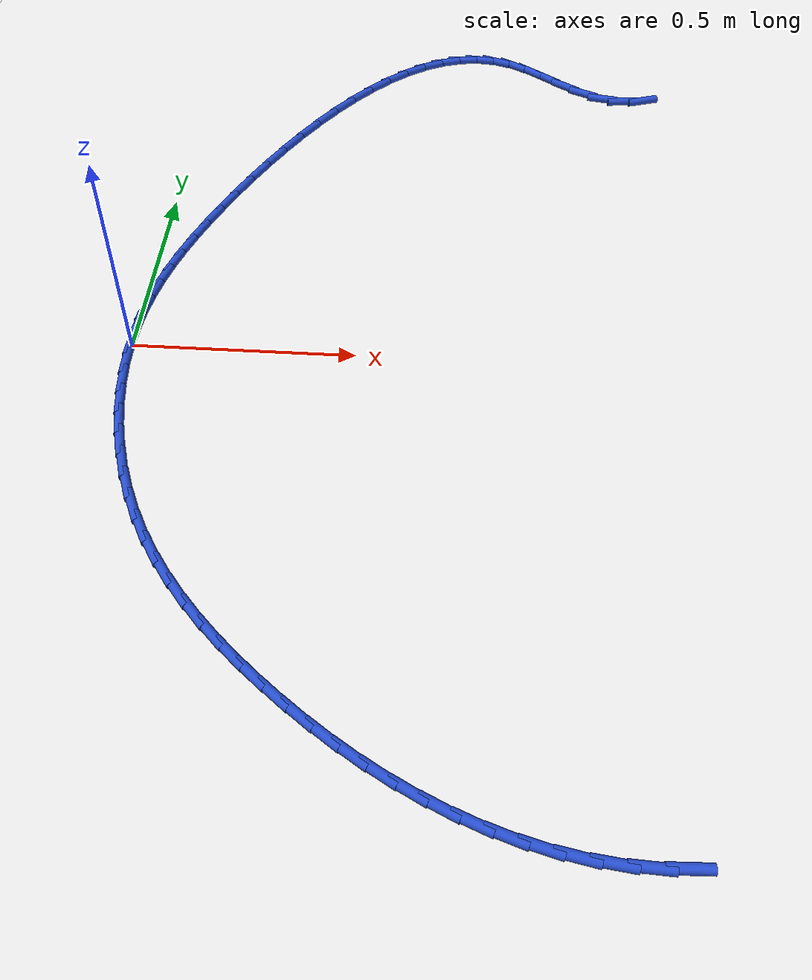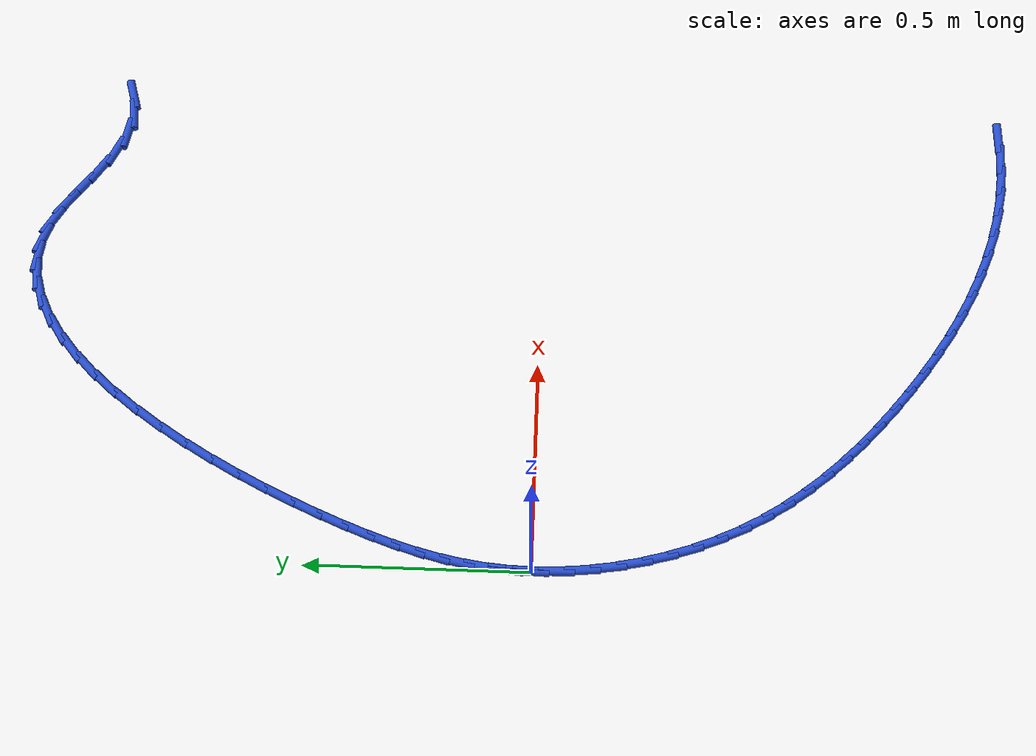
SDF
<sdf version="1.6">
 <world name="default">
  <model name="ground_plane">
   <static>1</static>
   <link name="link">
    <collision name="collision">
     <geometry><plane><normal>0 0 1</normal><size>100 100</size></plane></geometry>
     <surface><friction><ode><mu>100</mu><mu2>50</mu2></ode></friction></surface>
    </collision>
    <visual name="visual">
     <cast_shadows>0</cast_shadows>
     <geometry><plane><normal>0 0 1</normal><size>100 100</size></plane></geometry>
     <material>
      <script><uri>file://media/materials/scripts/gazebo.material</uri><name>Gazebo/WhiteGlow</name></script>
     </material>
    </visual>
   </link>
  </model>
  <model name="line">
   <link name="link_0">
    <pose>1.734723475976807e-18 -9.71445146547012e-17 0.01 0 1.57 1.5346430785605563</pose>
    <collision name="collision">
     <geometry><cylinder><radius>0.01</radius><length>0.08</length></cylinder></geometry>
    </collision>
    <visual name="visual">
     <material>
      <script><name>Gazebo/Blue</name><uri>file://media/materials/scripts/gazebo.material</uri></script>
     </material>
     <geometry><cylinder><radius>0.01</radius><length>0.08</length></cylinder></geometry>
    </visual>
   </link>
   <link name="link_1">
    <pose>0.0019720799953894487 0.05452402784146234 0.01 0 1.57 1.473120791428016</pose>
    <collision name="collision">
     <geometry><cylinder><radius>0.01</radius><length>0.08</length></cylinder></geometry>
    </collision>
    <visual name="visual">
     <material>
      <script><name>Gazebo/Blue</name><uri>file://media/materials/scripts/gazebo.material</uri></script>
     </material>
     <geometry><cylinder><radius>0.01</radius><length>0.08</length></cylinder></geometry>
    </visual>
   </link>
   <link name="link_2">
    <pose>0.007244086037763075 0.10832695273401785 0.01 0 1.57 1.4134382518745707</pose>
    <collision name="collision">
     <geometry><cylinder><radius>0.01</radius><length>0.08</length></cylinder></geometry>
    </collision>
    <visual name="visual">
     <material>
      <script><name>Gazebo/Blue</name><uri>file://media/materials/scripts/gazebo.material</uri></script>
     </material>
     <geometry><cylinder><radius>0.01</radius><length>0.08</length></cylinder></geometry>
    </visual>
   </link>
   <link name="link_3">
    <pose>0.015730111353292425 0.1618092224143756 0.01 0 1.57 1.3572667612286224</pose>
    <collision name="collision">
     <geometry><cylinder><radius>0.01</radius><length>0.08</length></cylinder></geometry>
    </collision>
    <visual name="visual">
     <material>
      <script><name>Gazebo/Blue</name><uri>file://media/materials/scripts/gazebo.material</uri></script>
     </material>
     <geometry><cylinder><radius>0.01</radius><length>0.08</length></cylinder></geometry>
    </visual>
   </link>
   <link name="link_4">
    <pose>0.027344249168149017 0.21537128461924468 0.01 0 1.57 1.3059651407803263</pose>
    <collision name="collision">
     <geometry><cylinder><radius>0.01</radius><length>0.08</length></cylinder></geometry>
    </collision>
    <visual name="visual">
     <material>
      <script><name>Gazebo/Blue</name><uri>file://media/materials/scripts/gazebo.material</uri></script>
     </material>
     <geometry><cylinder><radius>0.01</radius><length>0.08</length></cylinder></geometry>
    </visual>
   </link>
   <link name="link_5">
    <pose>0.04200059270850438 0.2694135870853342 0.01 0 1.57 1.2604776931455266</pose>
    <collision name="collision">
     <geometry><cylinder><radius>0.01</radius><length>0.08</length></cylinder></geometry>
    </collision>
    <visual name="visual">
     <material>
      <script><name>Gazebo/Blue</name><uri>file://media/materials/scripts/gazebo.material</uri></script>
     </material>
     <geometry><cylinder><radius>0.01</radius><length>0.08</length></cylinder></geometry>
    </visual>
   </link>
   <link name="link_6">
    <pose>0.059613235200530065 0.3243365775493533 0.01 0 1.57 1.2213156796256992</pose>
    <collision name="collision">
     <geometry><cylinder><radius>0.01</radius><length>0.08</length></cylinder></geometry>
    </collision>
    <visual name="visual">
     <material>
      <script><name>Gazebo/Blue</name><uri>file://media/materials/scripts/gazebo.material</uri></script>
     </material>
     <geometry><cylinder><radius>0.01</radius><length>0.08</length></cylinder></geometry>
    </visual>
   </link>
   <link name="link_7">
    <pose>0.08009626987039753 0.3805407037480108 0.01 0 1.57 1.1886047060645213</pose>
    <collision name="collision">
     <geometry><cylinder><radius>0.01</radius><length>0.08</length></cylinder></geometry>
    </collision>
    <visual name="visual">
     <material>
      <script><name>Gazebo/Blue</name><uri>file://media/materials/scripts/gazebo.material</uri></script>
     </material>
     <geometry><cylinder><radius>0.01</radius><length>0.08</length></cylinder></geometry>
    </visual>
   </link>
   <link name="link_8">
    <pose>0.10336378994427839 0.4384264134180163 0.01 0 1.57 1.1619902703633838</pose>
    <collision name="collision">
     <geometry><cylinder><radius>0.01</radius><length>0.08</length></cylinder></geometry>
    </collision>
    <visual name="visual">
     <material>
      <script><name>Gazebo/Blue</name><uri>file://media/materials/scripts/gazebo.material</uri></script>
     </material>
     <geometry><cylinder><radius>0.01</radius><length>0.08</length></cylinder></geometry>
    </visual>
   </link>
   <link name="link_9">
    <pose>0.12932775987121028 0.49835998549261357 0.01 0 1.57 1.13785303710498</pose>
    <collision name="collision">
     <geometry><cylinder><radius>0.01</radius><length>0.08</length></cylinder></geometry>
    </collision>
    <visual name="visual">
     <material>
      <script><name>Gazebo/Blue</name><uri>file://media/materials/scripts/gazebo.material</uri></script>
     </material>
     <geometry><cylinder><radius>0.01</radius><length>0.08</length></cylinder></geometry>
    </visual>
   </link>
   <link name="link_10">
    <pose>0.15786213018204084 0.5600975410454112 0.01 0 1.57 1.1127702398826105</pose>
    <collision name="collision">
     <geometry><cylinder><radius>0.01</radius><length>0.08</length></cylinder></geometry>
    </collision>
    <visual name="visual">
     <material>
      <script><name>Gazebo/Blue</name><uri>file://media/materials/scripts/gazebo.material</uri></script>
     </material>
     <geometry><cylinder><radius>0.01</radius><length>0.08</length></cylinder></geometry>
    </visual>
   </link>
   <link name="link_11">
    <pose>0.18880807764695579 0.622869152570719 0.01 0 1.57 1.0859457908192263</pose>
    <collision name="collision">
     <geometry><cylinder><radius>0.01</radius><length>0.08</length></cylinder></geometry>
    </collision>
    <visual name="visual">
     <material>
      <script><name>Gazebo/Blue</name><uri>file://media/materials/scripts/gazebo.material</uri></script>
     </material>
     <geometry><cylinder><radius>0.01</radius><length>0.08</length></cylinder></geometry>
    </visual>
   </link>
   <link name="link_12">
    <pose>0.2220057055235994 0.6858876617130489 0.01 0 1.57 1.0566408122890363</pose>
    <collision name="collision">
     <geometry><cylinder><radius>0.01</radius><length>0.08</length></cylinder></geometry>
    </collision>
    <visual name="visual">
     <material>
      <script><name>Gazebo/Blue</name><uri>file://media/materials/scripts/gazebo.material</uri></script>
     </material>
     <geometry><cylinder><radius>0.01</radius><length>0.08</length></cylinder></geometry>
    </visual>
   </link>
   <link name="link_13">
    <pose>0.25729511706961616 0.7483659101169136 0.01 0 1.57 1.0240187672028076</pose>
    <collision name="collision">
     <geometry><cylinder><radius>0.01</radius><length>0.08</length></cylinder></geometry>
    </collision>
    <visual name="visual">
     <material>
      <script><name>Gazebo/Blue</name><uri>file://media/materials/scripts/gazebo.material</uri></script>
     </material>
     <geometry><cylinder><radius>0.01</radius><length>0.08</length></cylinder></geometry>
    </visual>
   </link>
   <link name="link_14">
    <pose>0.29451641554265023 0.8095167394268247 0.01 0 1.57 0.9870769496536388</pose>
    <collision name="collision">
     <geometry><cylinder><radius>0.01</radius><length>0.08</length></cylinder></geometry>
    </collision>
    <visual name="visual">
     <material>
      <script><name>Gazebo/Blue</name><uri>file://media/materials/scripts/gazebo.material</uri></script>
     </material>
     <geometry><cylinder><radius>0.01</radius><length>0.08</length></cylinder></geometry>
    </visual>
   </link>
   <link name="link_15">
    <pose>0.33350970420034615 0.8685529912872948 0.01 0 1.57 0.9445648941803074</pose>
    <collision name="collision">
     <geometry><cylinder><radius>0.01</radius><length>0.08</length></cylinder></geometry>
    </collision>
    <visual name="visual">
     <material>
      <script><name>Gazebo/Blue</name><uri>file://media/materials/scripts/gazebo.material</uri></script>
     </material>
     <geometry><cylinder><radius>0.01</radius><length>0.08</length></cylinder></geometry>
    </visual>
   </link>
   <link name="link_16">
    <pose>0.3741150863003482 0.924687507342836 0.01 0 1.57 0.8948812730705519</pose>
    <collision name="collision">
     <geometry><cylinder><radius>0.01</radius><length>0.08</length></cylinder></geometry>
    </collision>
    <visual name="visual">
     <material>
      <script><name>Gazebo/Blue</name><uri>file://media/materials/scripts/gazebo.material</uri></script>
     </material>
     <geometry><cylinder><radius>0.01</radius><length>0.08</length></cylinder></geometry>
    </visual>
   </link>
   <link name="link_17">
    <pose>0.41617266510030065 0.9771331292379604 0.01 0 1.57 0.8359433199582409</pose>
    <collision name="collision">
     <geometry><cylinder><radius>0.01</radius><length>0.08</length></cylinder></geometry>
    </collision>
    <visual name="visual">
     <material>
      <script><name>Gazebo/Blue</name><uri>file://media/materials/scripts/gazebo.material</uri></script>
     </material>
     <geometry><cylinder><radius>0.01</radius><length>0.08</length></cylinder></geometry>
    </visual>
   </link>
   <link name="link_18">
    <pose>0.4595225438578479 1.02510269861718 0.01 0 1.57 0.765032231385892</pose>
    <collision name="collision">
     <geometry><cylinder><radius>0.01</radius><length>0.08</length></cylinder></geometry>
    </collision>
    <visual name="visual">
     <material>
      <script><name>Gazebo/Blue</name><uri>file://media/materials/scripts/gazebo.material</uri></script>
     </material>
     <geometry><cylinder><radius>0.01</radius><length>0.08</length></cylinder></geometry>
    </visual>
   </link>
   <link name="link_19">
    <pose>0.5040048258306346 1.0678090571250078 0.01 0 1.57 0.6786478515485211</pose>
    <collision name="collision">
     <geometry><cylinder><radius>0.01</radius><length>0.08</length></cylinder></geometry>
    </collision>
    <visual name="visual">
     <material>
      <script><name>Gazebo/Blue</name><uri>file://media/materials/scripts/gazebo.material</uri></script>
     </material>
     <geometry><cylinder><radius>0.01</radius><length>0.08</length></cylinder></geometry>
    </visual>
   </link>
   <link name="link_20">
    <pose>0.5494596142763045 1.104465046405955 0.01 0 1.57 0.5724856826066277</pose>
    <collision name="collision">
     <geometry><cylinder><radius>0.01</radius><length>0.08</length></cylinder></geometry>
    </collision>
    <visual name="visual">
     <material>
      <script><name>Gazebo/Blue</name><uri>file://media/materials/scripts/gazebo.material</uri></script>
     </material>
     <geometry><cylinder><radius>0.01</radius><length>0.08</length></cylinder></geometry>
    </visual>
   </link>
   <link name="link_21">
    <pose>0.5957270124525027 1.1342835081045348 0.01 0 1.57 0.44182506000432953</pose>
    <collision name="collision">
     <geometry><cylinder><radius>0.01</radius><length>0.08</length></cylinder></geometry>
    </collision>
    <visual name="visual">
     <material>
      <script><name>Gazebo/Blue</name><uri>file://media/materials/scripts/gazebo.material</uri></script>
     </material>
     <geometry><cylinder><radius>0.01</radius><length>0.08</length></cylinder></geometry>
    </visual>
   </link>
   <link name="link_22">
    <pose>0.6426471236168728 1.1564772838652584 0.01 0 1.57 0.2828834229506619</pose>
    <collision name="collision">
     <geometry><cylinder><radius>0.01</radius><length>0.08</length></cylinder></geometry>
    </collision>
    <visual name="visual">
     <material>
      <script><name>Gazebo/Blue</name><uri>file://media/materials/scripts/gazebo.material</uri></script>
     </material>
     <geometry><cylinder><radius>0.01</radius><length>0.08</length></cylinder></geometry>
    </visual>
   </link>
   <link name="link_23">
    <pose>0.6900600510270596 1.1702592153326385 0.01 0 1.57 0.09569275200330342</pose>
    <collision name="collision">
     <geometry><cylinder><radius>0.01</radius><length>0.08</length></cylinder></geometry>
    </collision>
    <visual name="visual">
     <material>
      <script><name>Gazebo/Blue</name><uri>file://media/materials/scripts/gazebo.material</uri></script>
     </material>
     <geometry><cylinder><radius>0.01</radius><length>0.08</length></cylinder></geometry>
    </visual>
   </link>
   <link name="link_24">
    <pose>0.7378058979407074 1.1748421441511876 0.01 0 1.57 -0.11228365393834383</pose>
    <collision name="collision">
     <geometry><cylinder><radius>0.01</radius><length>0.08</length></cylinder></geometry>
    </collision>
    <visual name="visual">
     <material>
      <script><name>Gazebo/Blue</name><uri>file://media/materials/scripts/gazebo.material</uri></script>
     </material>
     <geometry><cylinder><radius>0.01</radius><length>0.08</length></cylinder></geometry>
    </visual>
   </link>
   <link name="link_25">
    <pose>0.7857247676154608 1.1694389119654178 0.01 0 1.57 -0.32548654663459614</pose>
    <collision name="collision">
     <geometry><cylinder><radius>0.01</radius><length>0.08</length></cylinder></geometry>
    </collision>
    <visual name="visual">
     <material>
      <script><name>Gazebo/Blue</name><uri>file://media/materials/scripts/gazebo.material</uri></script>
     </material>
     <geometry><cylinder><radius>0.01</radius><length>0.08</length></cylinder></geometry>
    </visual>
   </link>
   <link name="link_26">
    <pose>0.8336567633089632 1.15326236041984 0.01 0 1.57 -0.5101231748548711</pose>
    <collision name="collision">
     <geometry><cylinder><radius>0.01</radius><length>0.08</length></cylinder></geometry>
    </collision>
    <visual name="visual">
     <material>
      <script><name>Gazebo/Blue</name><uri>file://media/materials/scripts/gazebo.material</uri></script>
     </material>
     <geometry><cylinder><radius>0.01</radius><length>0.08</length></cylinder></geometry>
    </visual>
   </link>
   <link name="link_27">
    <pose>0.8815333935295073 1.1264744071719714 0.01 0 1.57 -0.6058259523580627</pose>
    <collision name="collision">
     <geometry><cylinder><radius>0.01</radius><length>0.08</length></cylinder></geometry>
    </collision>
    <visual name="visual">
     <material>
      <script><name>Gazebo/Blue</name><uri>file://media/materials/scripts/gazebo.material</uri></script>
     </material>
     <geometry><cylinder><radius>0.01</radius><length>0.08</length></cylinder></geometry>
    </visual>
   </link>
   <link name="link_28">
    <pose>0.9296615723209538 1.0931348683746045 0.01 0 1.57 -0.620056117338753</pose>
    <collision name="collision">
     <geometry><cylinder><radius>0.01</radius><length>0.08</length></cylinder></geometry>
    </collision>
    <visual name="visual">
     <material>
      <script><name>Gazebo/Blue</name><uri>file://media/materials/scripts/gazebo.material</uri></script>
     </material>
     <geometry><cylinder><radius>0.01</radius><length>0.08</length></cylinder></geometry>
    </visual>
   </link>
   <link name="link_29">
    <pose>0.9784445763519971 1.0583041094392565 0.01 0 1.57 -0.560198079646541</pose>
    <collision name="collision">
     <geometry><cylinder><radius>0.01</radius><length>0.08</length></cylinder></geometry>
    </collision>
    <visual name="visual">
     <material>
      <script><name>Gazebo/Blue</name><uri>file://media/materials/scripts/gazebo.material</uri></script>
     </material>
     <geometry><cylinder><radius>0.01</radius><length>0.08</length></cylinder></geometry>
    </visual>
   </link>
   <link name="link_30">
    <pose>1.0282856823553552 1.0270424964422307 0.01 0 1.57 -0.41547009864156315</pose>
    <collision name="collision">
     <geometry><cylinder><radius>0.01</radius><length>0.08</length></cylinder></geometry>
    </collision>
    <visual name="visual">
     <material>
      <script><name>Gazebo/Blue</name><uri>file://media/materials/scripts/gazebo.material</uri></script>
     </material>
     <geometry><cylinder><radius>0.01</radius><length>0.08</length></cylinder></geometry>
    </visual>
   </link>
   <link name="link_31">
    <pose>1.0795881670637486 1.0044103954598314 0.01 0 1.57 -0.16711219664156496</pose>
    <collision name="collision">
     <geometry><cylinder><radius>0.01</radius><length>0.08</length></cylinder></geometry>
    </collision>
    <visual name="visual">
     <material>
      <script><name>Gazebo/Blue</name><uri>file://media/materials/scripts/gazebo.material</uri></script>
     </material>
     <geometry><cylinder><radius>0.01</radius><length>0.08</length></cylinder></geometry>
    </visual>
   </link>
   <link name="link_32">
    <pose>1.1327520891172547 0.9954424184639807 0.01 0 1.57 0.11543434612420328</pose>
    <collision name="collision">
     <geometry><cylinder><radius>0.01</radius><length>0.08</length></cylinder></geometry>
    </collision>
    <visual name="visual">
     <material>
      <script><name>Gazebo/Blue</name><uri>file://media/materials/scripts/gazebo.material</uri></script>
     </material>
     <geometry><cylinder><radius>0.01</radius><length>0.08</length></cylinder></geometry>
    </visual>
   </link>
   <link name="link_33">
    <pose>1.1877585634906158 1.0018204091600205 0.01 0 1.57 0.29084960013507566</pose>
    <collision name="collision">
     <geometry><cylinder><radius>0.01</radius><length>0.08</length></cylinder></geometry>
    </collision>
    <visual name="visual">
     <material>
      <script><name>Gazebo/Blue</name><uri>file://media/materials/scripts/gazebo.material</uri></script>
     </material>
     <geometry><cylinder><radius>0.01</radius><length>0.08</length></cylinder></geometry>
    </visual>
   </link>
   <link name="link_100">
    <pose>1.1334473366027664 -1.0844343381300035 0.01 0 1.57 0.033857597270711304</pose>
    <collision name="collision">
     <geometry><cylinder><radius>0.01</radius><length>0.08</length></cylinder></geometry>
    </collision>
    <visual name="visual">
     <material>
      <script><name>Gazebo/Blue</name><uri>file://media/materials/scripts/gazebo.material</uri></script>
     </material>
     <geometry><cylinder><radius>0.01</radius><length>0.08</length></cylinder></geometry>
    </visual>
   </link>
   <link name="link_101">
    <pose>1.073973517421654 -1.0864487485378092 0.01 0 1.57 -0.04580608488519083</pose>
    <collision name="collision">
     <geometry><cylinder><radius>0.01</radius><length>0.08</length></cylinder></geometry>
    </collision>
    <visual name="visual">
     <material>
      <script><name>Gazebo/Blue</name><uri>file://media/materials/scripts/gazebo.material</uri></script>
     </material>
     <geometry><cylinder><radius>0.01</radius><length>0.08</length></cylinder></geometry>
    </visual>
   </link>
   <link name="link_102">
    <pose>1.0153152636749059 -1.0837599627899341 0.01 0 1.57 -0.12224541981445966</pose>
    <collision name="collision">
     <geometry><cylinder><radius>0.01</radius><length>0.08</length></cylinder></geometry>
    </collision>
    <visual name="visual">
     <material>
      <script><name>Gazebo/Blue</name><uri>file://media/materials/scripts/gazebo.material</uri></script>
     </material>
     <geometry><cylinder><radius>0.01</radius><length>0.08</length></cylinder></geometry>
    </visual>
   </link>
   <link name="link_103">
    <pose>0.9575188873719513 -1.0766592141557665 0.01 0 1.57 -0.19475473116727024</pose>
    <collision name="collision">
     <geometry><cylinder><radius>0.01</radius><length>0.08</length></cylinder></geometry>
    </collision>
    <visual name="visual">
     <material>
      <script><name>Gazebo/Blue</name><uri>file://media/materials/scripts/gazebo.material</uri></script>
     </material>
     <geometry><cylinder><radius>0.01</radius><length>0.08</length></cylinder></geometry>
    </visual>
   </link>
   <link name="link_104">
    <pose>0.9006307005222169 -1.0654377359046963 0.01 0 1.57 -0.2628597908368788</pose>
    <collision name="collision">
     <geometry><cylinder><radius>0.01</radius><length>0.08</length></cylinder></geometry>
    </collision>
    <visual name="visual">
     <material>
      <script><name>Gazebo/Blue</name><uri>file://media/materials/scripts/gazebo.material</uri></script>
     </material>
     <geometry><cylinder><radius>0.01</radius><length>0.08</length></cylinder></geometry>
    </visual>
   </link>
   <link name="link_105">
    <pose>0.8446970151351301 -1.050386761306112 0.01 0 1.57 -0.3263028479789173</pose>
    <collision name="collision">
     <geometry><cylinder><radius>0.01</radius><length>0.08</length></cylinder></geometry>
    </collision>
    <visual name="visual">
     <material>
      <script><name>Gazebo/Blue</name><uri>file://media/materials/scripts/gazebo.material</uri></script>
     </material>
     <geometry><cylinder><radius>0.01</radius><length>0.08</length></cylinder></geometry>
    </visual>
   </link>
   <link name="link_106">
    <pose>0.7897641432201179 -1.0317975236294026 0.01 0 1.57 -0.3850091855639076</pose>
    <collision name="collision">
     <geometry><cylinder><radius>0.01</radius><length>0.08</length></cylinder></geometry>
    </collision>
    <visual name="visual">
     <material>
      <script><name>Gazebo/Blue</name><uri>file://media/materials/scripts/gazebo.material</uri></script>
     </material>
     <geometry><cylinder><radius>0.01</radius><length>0.08</length></cylinder></geometry>
    </visual>
   </link>
   <link name="link_107">
    <pose>0.7358783967866068 -1.009961256143957 0.01 0 1.57 -0.4390455593260228</pose>
    <collision name="collision">
     <geometry><cylinder><radius>0.01</radius><length>0.08</length></cylinder></geometry>
    </collision>
    <visual name="visual">
     <material>
      <script><name>Gazebo/Blue</name><uri>file://media/materials/scripts/gazebo.material</uri></script>
     </material>
     <geometry><cylinder><radius>0.01</radius><length>0.08</length></cylinder></geometry>
    </visual>
   </link>
   <link name="link_108">
    <pose>0.6830860878440264 -0.9851691921191654 0.01 0 1.57 -0.4885785972164774</pose>
    <collision name="collision">
     <geometry><cylinder><radius>0.01</radius><length>0.08</length></cylinder></geometry>
    </collision>
    <visual name="visual">
     <material>
      <script><name>Gazebo/Blue</name><uri>file://media/materials/scripts/gazebo.material</uri></script>
     </material>
     <geometry><cylinder><radius>0.01</radius><length>0.08</length></cylinder></geometry>
    </visual>
   </link>
   <link name="link_109">
    <pose>0.6314335284018024 -0.957712564824416 0.01 0 1.57 -0.5338380852092511</pose>
    <collision name="collision">
     <geometry><cylinder><radius>0.01</radius><length>0.08</length></cylinder></geometry>
    </collision>
    <visual name="visual">
     <material>
      <script><name>Gazebo/Blue</name><uri>file://media/materials/scripts/gazebo.material</uri></script>
     </material>
     <geometry><cylinder><radius>0.01</radius><length>0.08</length></cylinder></geometry>
    </visual>
   </link>
   <link name="link_110">
    <pose>0.5809670304693618 -0.9278826075290976 0.01 0 1.57 -0.5750872710593514</pose>
    <collision name="collision">
     <geometry><cylinder><radius>0.01</radius><length>0.08</length></cylinder></geometry>
    </collision>
    <visual name="visual">
     <material>
      <script><name>Gazebo/Blue</name><uri>file://media/materials/scripts/gazebo.material</uri></script>
     </material>
     <geometry><cylinder><radius>0.01</radius><length>0.08</length></cylinder></geometry>
    </visual>
   </link>
   <link name="link_111">
    <pose>0.531732906056133 -0.8959705535025997 0.01 0 1.57 -0.6126003855414339</pose>
    <collision name="collision">
     <geometry><cylinder><radius>0.01</radius><length>0.08</length></cylinder></geometry>
    </collision>
    <visual name="visual">
     <material>
      <script><name>Gazebo/Blue</name><uri>file://media/materials/scripts/gazebo.material</uri></script>
     </material>
     <geometry><cylinder><radius>0.01</radius><length>0.08</length></cylinder></geometry>
    </visual>
   </link>
   <link name="link_112">
    <pose>0.4837774671715433 -0.8622676360143117 0.01 0 1.57 -0.6466465081484796</pose>
    <collision name="collision">
     <geometry><cylinder><radius>0.01</radius><length>0.08</length></cylinder></geometry>
    </collision>
    <visual name="visual">
     <material>
      <script><name>Gazebo/Blue</name><uri>file://media/materials/scripts/gazebo.material</uri></script>
     </material>
     <geometry><cylinder><radius>0.01</radius><length>0.08</length></cylinder></geometry>
    </visual>
   </link>
   <link name="link_113">
    <pose>0.4371470258250194 -0.8270650883336222 0.01 0 1.57 -0.6783198752035804</pose>
    <collision name="collision">
     <geometry><cylinder><radius>0.01</radius><length>0.08</length></cylinder></geometry>
    </collision>
    <visual name="visual">
     <material>
      <script><name>Gazebo/Blue</name><uri>file://media/materials/scripts/gazebo.material</uri></script>
     </material>
     <geometry><cylinder><radius>0.01</radius><length>0.08</length></cylinder></geometry>
    </visual>
   </link>
   <link name="link_114">
    <pose>0.3919059033606051 -0.7906058862472218 0.01 0 1.57 -0.712570371410996</pose>
    <collision name="collision">
     <geometry><cylinder><radius>0.01</radius><length>0.08</length></cylinder></geometry>
    </collision>
    <visual name="visual">
     <material>
      <script><name>Gazebo/Blue</name><uri>file://media/materials/scripts/gazebo.material</uri></script>
     </material>
     <geometry><cylinder><radius>0.01</radius><length>0.08</length></cylinder></geometry>
    </visual>
   </link>
   <link name="link_115">
    <pose>0.3482199707305812 -0.7528608950742594 0.01 0 1.57 -0.751198954898638</pose>
    <collision name="collision">
     <geometry><cylinder><radius>0.01</radius><length>0.08</length></cylinder></geometry>
    </collision>
    <visual name="visual">
     <material>
      <script><name>Gazebo/Blue</name><uri>file://media/materials/scripts/gazebo.material</uri></script>
     </material>
     <geometry><cylinder><radius>0.01</radius><length>0.08</length></cylinder></geometry>
    </visual>
   </link>
   <link name="link_116">
    <pose>0.3062906597488002 -0.7137056919015031 0.01 0 1.57 -0.7943082891740881</pose>
    <collision name="collision">
     <geometry><cylinder><radius>0.01</radius><length>0.08</length></cylinder></geometry>
    </collision>
    <visual name="visual">
     <material>
      <script><name>Gazebo/Blue</name><uri>file://media/materials/scripts/gazebo.material</uri></script>
     </material>
     <geometry><cylinder><radius>0.01</radius><length>0.08</length></cylinder></geometry>
    </visual>
   </link>
   <link name="link_117">
    <pose>0.26631944014875514 -0.6730157522069417 0.01 0 1.57 -0.8419432806653572</pose>
    <collision name="collision">
     <geometry><cylinder><radius>0.01</radius><length>0.08</length></cylinder></geometry>
    </collision>
    <visual name="visual">
     <material>
      <script><name>Gazebo/Blue</name><uri>file://media/materials/scripts/gazebo.material</uri></script>
     </material>
     <geometry><cylinder><radius>0.01</radius><length>0.08</length></cylinder></geometry>
    </visual>
   </link>
   <link name="link_118">
    <pose>0.22850778166393917 -0.6306665514685642 0.01 0 1.57 -0.8940657106633891</pose>
    <collision name="collision">
     <geometry><cylinder><radius>0.01</radius><length>0.08</length></cylinder></geometry>
    </collision>
    <visual name="visual">
     <material>
      <script><name>Gazebo/Blue</name><uri>file://media/materials/scripts/gazebo.material</uri></script>
     </material>
     <geometry><cylinder><radius>0.01</radius><length>0.08</length></cylinder></geometry>
    </visual>
   </link>
   <link name="link_119">
    <pose>0.19305715402784712 -0.5865335651643611 0.01 0 1.57 -0.9505254584786919</pose>
    <collision name="collision">
     <geometry><cylinder><radius>0.01</radius><length>0.08</length></cylinder></geometry>
    </collision>
    <visual name="visual">
     <material>
      <script><name>Gazebo/Blue</name><uri>file://media/materials/scripts/gazebo.material</uri></script>
     </material>
     <geometry><cylinder><radius>0.01</radius><length>0.08</length></cylinder></geometry>
    </visual>
   </link>
   <link name="link_120">
    <pose>0.16016902697397198 -0.5404922687723216 0.01 0 1.57 -1.0110337406646595</pose>
    <collision name="collision">
     <geometry><cylinder><radius>0.01</radius><length>0.08</length></cylinder></geometry>
    </collision>
    <visual name="visual">
     <material>
      <script><name>Gazebo/Blue</name><uri>file://media/materials/scripts/gazebo.material</uri></script>
     </material>
     <geometry><cylinder><radius>0.01</radius><length>0.08</length></cylinder></geometry>
    </visual>
   </link>
   <link name="link_121">
    <pose>0.1300448702358075 -0.49241813777043464 0.01 0 1.57 -1.0750437459212148</pose>
    <collision name="collision">
     <geometry><cylinder><radius>0.01</radius><length>0.08</length></cylinder></geometry>
    </collision>
    <visual name="visual">
     <material>
      <script><name>Gazebo/Blue</name><uri>file://media/materials/scripts/gazebo.material</uri></script>
     </material>
     <geometry><cylinder><radius>0.01</radius><length>0.08</length></cylinder></geometry>
    </visual>
   </link>
   <link name="link_122">
    <pose>0.1028837600819547 -0.4421942080171125 0.01 0 1.57 -1.1391441970908065</pose>
    <collision name="collision">
     <geometry><cylinder><radius>0.01</radius><length>0.08</length></cylinder></geometry>
    </collision>
    <visual name="visual">
     <material>
      <script><name>Gazebo/Blue</name><uri>file://media/materials/scripts/gazebo.material</uri></script>
     </material>
     <geometry><cylinder><radius>0.01</radius><length>0.08</length></cylinder></geometry>
    </visual>
   </link>
   <link name="link_123">
    <pose>0.07881170158481014 -0.3899343297198495 0.01 0 1.57 -1.2003062660616919</pose>
    <collision name="collision">
     <geometry><cylinder><radius>0.01</radius><length>0.08</length></cylinder></geometry>
    </collision>
    <visual name="visual">
     <material>
      <script><name>Gazebo/Blue</name><uri>file://media/materials/scripts/gazebo.material</uri></script>
     </material>
     <geometry><cylinder><radius>0.01</radius><length>0.08</length></cylinder></geometry>
    </visual>
   </link>
   <link name="link_124">
    <pose>0.05786994535410089 -0.3360200720663904 0.01 0 1.57 -1.2591235310667415</pose>
    <collision name="collision">
     <geometry><cylinder><radius>0.01</radius><length>0.08</length></cylinder></geometry>
    </collision>
    <visual name="visual">
     <material>
      <script><name>Gazebo/Blue</name><uri>file://media/materials/scripts/gazebo.material</uri></script>
     </material>
     <geometry><cylinder><radius>0.01</radius><length>0.08</length></cylinder></geometry>
    </visual>
   </link>
   <link name="link_125">
    <pose>0.040094995754737614 -0.28084799649127884 0.01 0 1.57 -1.3163785830253465</pose>
    <collision name="collision">
     <geometry><cylinder><radius>0.01</radius><length>0.08</length></cylinder></geometry>
    </collision>
    <visual name="visual">
     <material>
      <script><name>Gazebo/Blue</name><uri>file://media/materials/scripts/gazebo.material</uri></script>
     </material>
     <geometry><cylinder><radius>0.01</radius><length>0.08</length></cylinder></geometry>
    </visual>
   </link>
   <link name="link_126">
    <pose>0.025523357151631263 -0.22481466442905879 0.01 0 1.57 -1.3728525128954667</pose>
    <collision name="collision">
     <geometry><cylinder><radius>0.01</radius><length>0.08</length></cylinder></geometry>
    </collision>
    <visual name="visual">
     <material>
      <script><name>Gazebo/Blue</name><uri>file://media/materials/scripts/gazebo.material</uri></script>
     </material>
     <geometry><cylinder><radius>0.01</radius><length>0.08</length></cylinder></geometry>
    </visual>
   </link>
   <link name="link_127">
    <pose>0.014191533909693355 -0.16831663731427668 0.01 0 1.57 -1.429338945259619</pose>
    <collision name="collision">
     <geometry><cylinder><radius>0.01</radius><length>0.08</length></cylinder></geometry>
    </collision>
    <visual name="visual">
     <material>
      <script><name>Gazebo/Blue</name><uri>file://media/materials/scripts/gazebo.material</uri></script>
     </material>
     <geometry><cylinder><radius>0.01</radius><length>0.08</length></cylinder></geometry>
    </visual>
   </link>
   <link name="link_128">
    <pose>0.006136030393834776 -0.11175047658147638 0.01 0 1.57 -1.4866627104864094</pose>
    <collision name="collision">
     <geometry><cylinder><radius>0.01</radius><length>0.08</length></cylinder></geometry>
    </collision>
    <visual name="visual">
     <material>
      <script><name>Gazebo/Blue</name><uri>file://media/materials/scripts/gazebo.material</uri></script>
     </material>
     <geometry><cylinder><radius>0.01</radius><length>0.08</length></cylinder></geometry>
    </visual>
   </link>
   <link name="link_129">
    <pose>0.001393350968966615 -0.05551274366520254 0.01 0 1.57 -1.5457019360814985</pose>
    <collision name="collision">
     <geometry><cylinder><radius>0.01</radius><length>0.08</length></cylinder></geometry>
    </collision>
    <visual name="visual">
     <material>
      <script><name>Gazebo/Blue</name><uri>file://media/materials/scripts/gazebo.material</uri></script>
     </material>
     <geometry><cylinder><radius>0.01</radius><length>0.08</length></cylinder></geometry>
    </visual>
   </link>
   <link name="link_130">
    <pose>3.469446951953614e-18 1.3877787807814457e-17 0.01 0 1.57 1.5341802645413585</pose>
    <collision name="collision">
     <geometry><cylinder><radius>0.01</radius><length>0.08</length></cylinder></geometry>
    </collision>
    <visual name="visual">
     <material>
      <script><name>Gazebo/Blue</name><uri>file://media/materials/scripts/gazebo.material</uri></script>
     </material>
     <geometry><cylinder><radius>0.01</radius><length>0.08</length></cylinder></geometry>
    </visual>
   </link>
   <link name="link_131">
    <pose>0.001992481851846032 0.05439119297958661 0.01 0 1.57 1.5341802645413587</pose>
    <collision name="collision">
     <geometry><cylinder><radius>0.01</radius><length>0.08</length></cylinder></geometry>
    </collision>
    <visual name="visual">
     <material>
      <script><name>Gazebo/Blue</name><uri>file://media/materials/scripts/gazebo.material</uri></script>
     </material>
     <geometry><cylinder><radius>0.01</radius><length>0.08</length></cylinder></geometry>
    </visual>
   </link>
  </model>
 </world>
</sdf>
